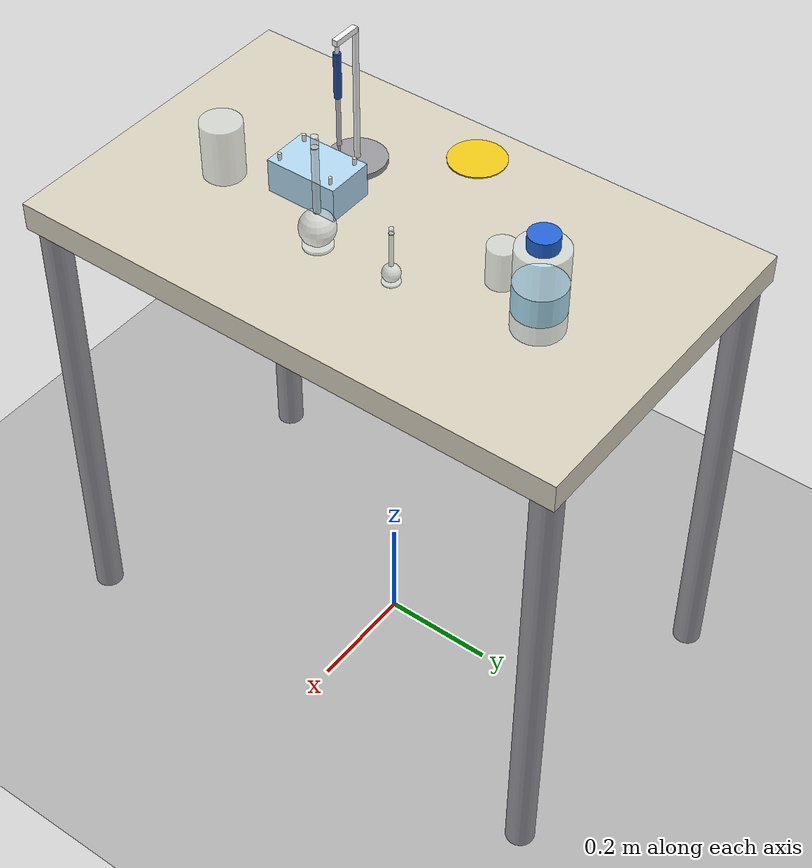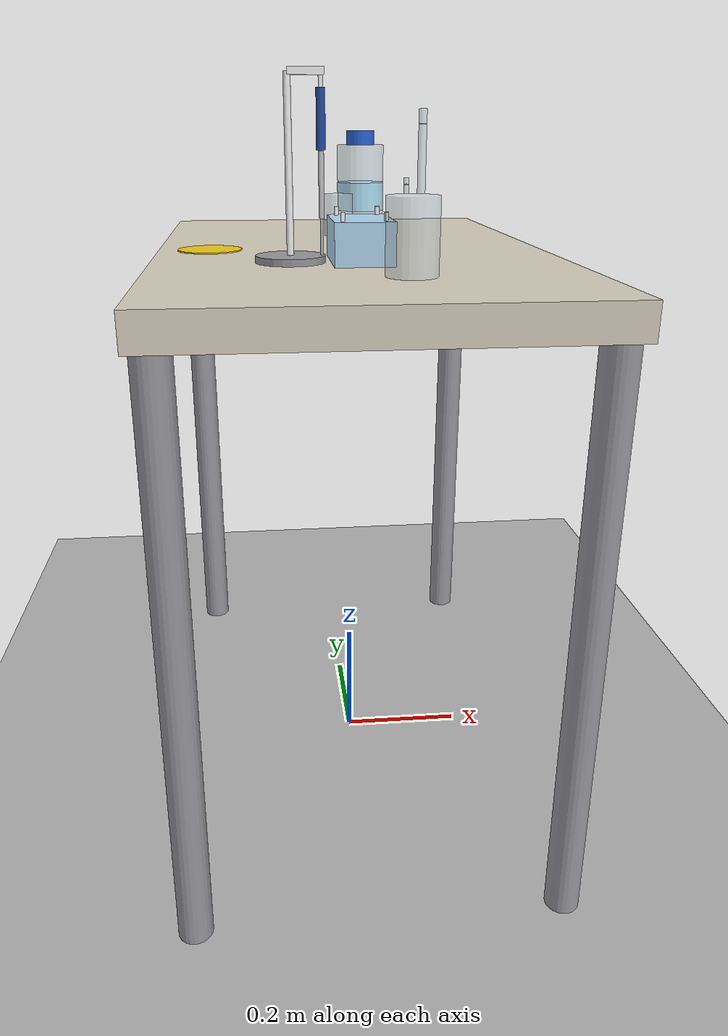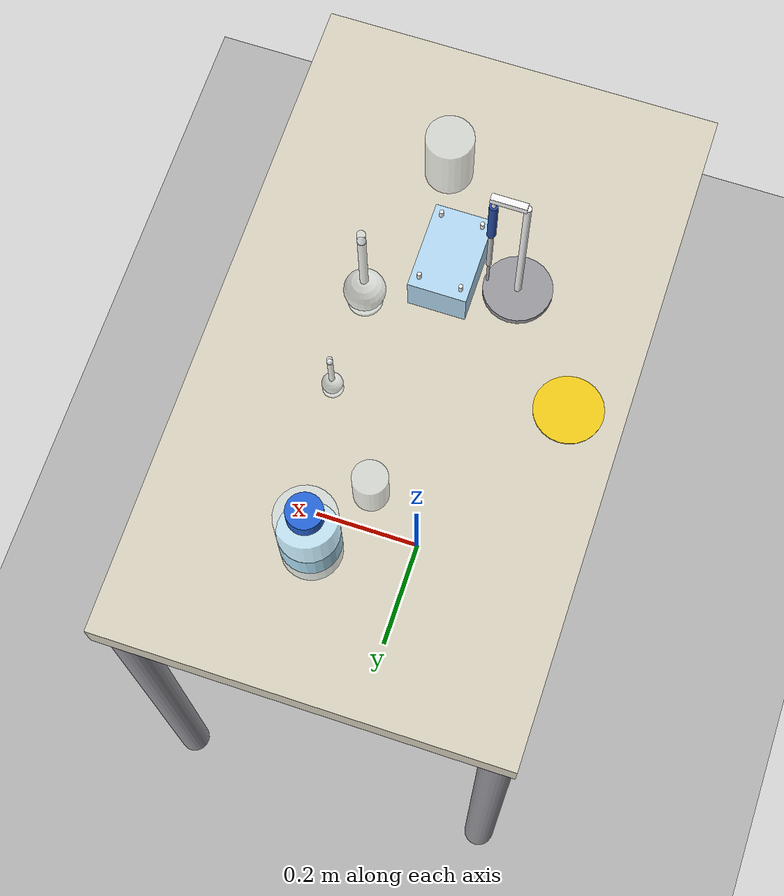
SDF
<?xml version="1.0" ?>
<sdf version="1.7">
  <world name="ketchup_dilution_cell">

    <light name="sun" type="directional">
      <cast_shadows>true</cast_shadows>
      <pose>0 0 10 0 0 0</pose>
      <diffuse>0.8 0.8 0.8 1</diffuse>
      <specular>0.2 0.2 0.2 1</specular>
      <attenuation>
        <range>1000</range>
        <constant>0.9</constant>
        <linear>0.01</linear>
        <quadratic>0.001</quadratic>
      </attenuation>
      <direction>-0.5 0.1 -0.9</direction>
    </light>

    <model name="ground_plane">
      <static>true</static>
      <link name="link">
        <collision name="c">
          <geometry>
            <plane>
              <normal>0 0 1</normal>
              <size>100 100</size>
            </plane>
          </geometry>
        </collision>
        <visual name="v">
          <geometry>
            <plane>
              <normal>0 0 1</normal>
              <size>100 100</size>
            </plane>
          </geometry>
          <material>
            <ambient>0.60 0.60 0.60 1</ambient>
            <diffuse>0.70 0.70 0.70 1</diffuse>
          </material>
        </visual>
      </link>
    </model>

    <model name="bench">
      <static>true</static>
      <pose>0 0 0 0 0 0</pose>
      <link name="link">
        <visual name="top">
          <pose>0 0 0.875 0 0 0</pose>
          <geometry><box><size>0.60 1.00 0.05</size></box></geometry>
          <material>
            <ambient>0.85 0.82 0.75 1</ambient>
            <diffuse>0.85 0.82 0.75 1</diffuse>
          </material>
        </visual>
        <collision name="top_c">
          <pose>0 0 0.875 0 0 0</pose>
          <geometry><box><size>0.60 1.00 0.05</size></box></geometry>
        </collision>
        <visual name="leg_fr">
          <pose>0.27 -0.47 0.425 0 0 0</pose>
          <geometry><cylinder><radius>0.025</radius><length>0.850</length></cylinder></geometry>
          <material>
            <ambient>0.45 0.45 0.48 1</ambient>
            <diffuse>0.60 0.60 0.63 1</diffuse>
          </material>
        </visual>
        <collision name="leg_fr_c">
          <pose>0.27 -0.47 0.425 0 0 0</pose>
          <geometry><cylinder><radius>0.025</radius><length>0.850</length></cylinder></geometry>
        </collision>
        <visual name="leg_fl">
          <pose>0.27 0.47 0.425 0 0 0</pose>
          <geometry><cylinder><radius>0.025</radius><length>0.850</length></cylinder></geometry>
          <material>
            <ambient>0.45 0.45 0.48 1</ambient>
            <diffuse>0.60 0.60 0.63 1</diffuse>
          </material>
        </visual>
        <collision name="leg_fl_c">
          <pose>0.27 0.47 0.425 0 0 0</pose>
          <geometry><cylinder><radius>0.025</radius><length>0.850</length></cylinder></geometry>
        </collision>
        <visual name="leg_br">
          <pose>-0.27 -0.47 0.425 0 0 0</pose>
          <geometry><cylinder><radius>0.025</radius><length>0.850</length></cylinder></geometry>
          <material>
            <ambient>0.45 0.45 0.48 1</ambient>
            <diffuse>0.60 0.60 0.63 1</diffuse>
          </material>
        </visual>
        <collision name="leg_br_c">
          <pose>-0.27 -0.47 0.425 0 0 0</pose>
          <geometry><cylinder><radius>0.025</radius><length>0.850</length></cylinder></geometry>
        </collision>
        <visual name="leg_bl">
          <pose>-0.27 0.47 0.425 0 0 0</pose>
          <geometry><cylinder><radius>0.025</radius><length>0.850</length></cylinder></geometry>
          <material>
            <ambient>0.45 0.45 0.48 1</ambient>
            <diffuse>0.60 0.60 0.63 1</diffuse>
          </material>
        </visual>
        <collision name="leg_bl_c">
          <pose>-0.27 0.47 0.425 0 0 0</pose>
          <geometry><cylinder><radius>0.025</radius><length>0.850</length></cylinder></geometry>
        </collision>
      </link>
    </model>

    <model name="arm_base_marker">
      <static>true</static>
      <pose>-0.22 0.00 0.901 0 0 0</pose>
      <link name="disc">
        <visual name="v">
          <geometry><cylinder><radius>0.05</radius><length>0.002</length></cylinder></geometry>
          <material>
            <ambient>0.95 0.80 0.10 1</ambient>
            <diffuse>0.95 0.80 0.10 1</diffuse>
          </material>
        </visual>
      </link>
    </model>

    <model name="source_beaker">
      <pose>0.00 0.20 0.935 0 0 0</pose>
      <link name="link">
        <inertial>
          <mass>0.150</mass>
          <inertia>
            <ixx>1.0e-4</ixx><iyy>1.0e-4</iyy><izz>5.0e-5</izz>
            <ixy>0</ixy><ixz>0</ixz><iyz>0</iyz>
          </inertia>
        </inertial>
        <visual name="glass">
          <geometry><cylinder><radius>0.025</radius><length>0.070</length></cylinder></geometry>
          <material>
            <ambient>0.85 0.90 0.92 0.50</ambient>
            <diffuse>0.85 0.90 0.92 0.50</diffuse>
          </material>
        </visual>
        <visual name="extract">
          <pose>0 0 -0.012 0 0 0</pose>
          <geometry><cylinder><radius>0.023</radius><length>0.044</length></cylinder></geometry>
          <material>
            <ambient>0.40 0.15 0.08 0.85</ambient>
            <diffuse>0.55 0.18 0.10 0.85</diffuse>
          </material>
        </visual>
        <collision name="c">
          <geometry><cylinder><radius>0.025</radius><length>0.070</length></cylinder></geometry>
        </collision>
      </link>
    </model>

    <model name="volumetric_flask_10ml">
      <pose>0.10 0.07 0.900 0 0 0</pose>
      <link name="link">
        <inertial>
          <mass>0.035</mass>
          <inertia>
            <ixx>5.0e-5</ixx><iyy>5.0e-5</iyy><izz>5.0e-6</izz>
            <ixy>0</ixy><ixz>0</ixz><iyz>0</iyz>
          </inertia>
        </inertial>
        <visual name="foot">
          <pose>0 0 0.0015 0 0 0</pose>
          <geometry><cylinder><radius>0.015</radius><length>0.003</length></cylinder></geometry>
          <material>
            <ambient>0.85 0.90 0.92 0.55</ambient>
            <diffuse>0.85 0.90 0.92 0.55</diffuse>
          </material>
        </visual>
        <visual name="bulb">
          <pose>0 0 0.018 0 0 0</pose>
          <geometry><sphere><radius>0.015</radius></sphere></geometry>
          <material>
            <ambient>0.85 0.90 0.92 0.55</ambient>
            <diffuse>0.85 0.90 0.92 0.55</diffuse>
          </material>
        </visual>
        <visual name="neck">
          <pose>0 0 0.068 0 0 0</pose>
          <geometry><cylinder><radius>0.004</radius><length>0.070</length></cylinder></geometry>
          <material>
            <ambient>0.85 0.90 0.92 0.55</ambient>
            <diffuse>0.85 0.90 0.92 0.55</diffuse>
          </material>
        </visual>
        <visual name="ring">
          <pose>0 0 0.093 0 0 0</pose>
          <geometry><cylinder><radius>0.00425</radius><length>0.001</length></cylinder></geometry>
          <material>
            <ambient>0.95 0.95 0.95 1</ambient>
            <diffuse>0.98 0.98 0.98 1</diffuse>
          </material>
        </visual>
        <collision name="c">
          <geometry><cylinder><radius>0.015</radius><length>0.103</length></cylinder></geometry>
        </collision>
      </link>
    </model>

    <model name="volumetric_flask_100ml">
      <pose>0.10 -0.07 0.900 0 0 0</pose>
      <link name="link">
        <inertial>
          <mass>0.150</mass>
          <inertia>
            <ixx>5.0e-4</ixx><iyy>5.0e-4</iyy><izz>5.0e-5</izz>
            <ixy>0</ixy><ixz>0</ixz><iyz>0</iyz>
          </inertia>
        </inertial>
        <visual name="foot">
          <pose>0 0 0.0025 0 0 0</pose>
          <geometry><cylinder><radius>0.025</radius><length>0.005</length></cylinder></geometry>
          <material>
            <ambient>0.85 0.90 0.92 0.55</ambient>
            <diffuse>0.85 0.90 0.92 0.55</diffuse>
          </material>
        </visual>
        <visual name="bulb">
          <pose>0 0 0.035 0 0 0</pose>
          <geometry><sphere><radius>0.030</radius></sphere></geometry>
          <material>
            <ambient>0.85 0.90 0.92 0.55</ambient>
            <diffuse>0.85 0.90 0.92 0.55</diffuse>
          </material>
        </visual>
        <visual name="neck">
          <pose>0 0 0.135 0 0 0</pose>
          <geometry><cylinder><radius>0.006</radius><length>0.140</length></cylinder></geometry>
          <material>
            <ambient>0.85 0.90 0.92 0.55</ambient>
            <diffuse>0.85 0.90 0.92 0.55</diffuse>
          </material>
        </visual>
        <visual name="ring">
          <pose>0 0 0.185 0 0 0</pose>
          <geometry><cylinder><radius>0.00625</radius><length>0.001</length></cylinder></geometry>
          <material>
            <ambient>0.95 0.95 0.95 1</ambient>
            <diffuse>0.98 0.98 0.98 1</diffuse>
          </material>
        </visual>
        <collision name="c">
          <geometry><cylinder><radius>0.030</radius><length>0.205</length></cylinder></geometry>
        </collision>
      </link>
    </model>

    <model name="solvent_bottle">
      <pose>0.05 0.30 0.975 0 0 0</pose>
      <link name="link">
        <inertial>
          <mass>0.700</mass>
          <inertia>
            <ixx>1.8e-3</ixx><iyy>1.8e-3</iyy><izz>6.3e-4</izz>
            <ixy>0</ixy><ixz>0</ixz><iyz>0</iyz>
          </inertia>
        </inertial>
        <visual name="body">
          <geometry><cylinder><radius>0.0425</radius><length>0.150</length></cylinder></geometry>
          <material>
            <ambient>0.85 0.92 0.95 0.55</ambient>
            <diffuse>0.85 0.92 0.95 0.55</diffuse>
          </material>
        </visual>
        <visual name="cap">
          <pose>0 0 0.0875 0 0 0</pose>
          <geometry><cylinder><radius>0.025</radius><length>0.025</length></cylinder></geometry>
          <material>
            <ambient>0.10 0.30 0.70 1</ambient>
            <diffuse>0.15 0.40 0.85 1</diffuse>
          </material>
        </visual>
        <visual name="label">
          <pose>0 0 -0.015 0 0 0</pose>
          <geometry><cylinder><radius>0.0426</radius><length>0.050</length></cylinder></geometry>
          <material>
            <ambient>0.65 0.85 0.95 1</ambient>
            <diffuse>0.70 0.90 0.98 1</diffuse>
          </material>
        </visual>
        <collision name="c">
          <geometry><cylinder><radius>0.0425</radius><length>0.175</length></cylinder></geometry>
        </collision>
      </link>
    </model>

    <model name="pipette_stand">
      <static>true</static>
      <pose>-0.10 -0.15 0.900 0 0 0</pose>
      <link name="foot">
        <pose>0 0 0.005 0 0 0</pose>
        <visual name="v">
          <geometry><cylinder><radius>0.05</radius><length>0.010</length></cylinder></geometry>
          <material>
            <ambient>0.45 0.45 0.48 1</ambient>
            <diffuse>0.60 0.60 0.62 1</diffuse>
          </material>
        </visual>
        <collision name="c">
          <geometry><cylinder><radius>0.05</radius><length>0.010</length></cylinder></geometry>
        </collision>
      </link>
      <link name="pole">
        <pose>0 0 0.130 0 0 0</pose>
        <visual name="v">
          <geometry><cylinder><radius>0.005</radius><length>0.240</length></cylinder></geometry>
          <material>
            <ambient>0.92 0.92 0.92 1</ambient>
            <diffuse>0.97 0.97 0.97 1</diffuse>
          </material>
        </visual>
      </link>
      <link name="arm">
        <pose>0.025 0 0.250 0 0 0</pose>
        <visual name="v">
          <geometry><box><size>0.050 0.010 0.010</size></box></geometry>
          <material>
            <ambient>0.92 0.92 0.92 1</ambient>
            <diffuse>0.97 0.97 0.97 1</diffuse>
          </material>
        </visual>
      </link>
      <link name="hook">
        <pose>0.045 0 0.230 0 0 0</pose>
        <visual name="v">
          <geometry><cylinder><radius>0.003</radius><length>0.030</length></cylinder></geometry>
          <material>
            <ambient>0.92 0.92 0.92 1</ambient>
            <diffuse>0.97 0.97 0.97 1</diffuse>
          </material>
        </visual>
      </link>
    </model>

    <model name="pipette_p1000">
      <pose>-0.055 -0.15 1.010 0 0 0</pose>
      <link name="link">
        <inertial>
          <mass>0.100</mass>
          <inertia>
            <ixx>5.0e-4</ixx><iyy>5.0e-4</iyy><izz>5.0e-6</izz>
            <ixy>0</ixy><ixz>0</ixz><iyz>0</iyz>
          </inertia>
        </inertial>
        <visual name="thumb_wheel">
          <pose>0 0 0.080 0 0 0</pose>
          <geometry><cylinder><radius>0.00625</radius><length>0.080</length></cylinder></geometry>
          <material>
            <ambient>0.10 0.20 0.45 1</ambient>
            <diffuse>0.15 0.30 0.65 1</diffuse>
          </material>
        </visual>
        <visual name="body">
          <pose>0 0 0 0 0 0</pose>
          <geometry><cylinder><radius>0.00375</radius><length>0.100</length></cylinder></geometry>
          <material>
            <ambient>0.60 0.60 0.62 1</ambient>
            <diffuse>0.78 0.78 0.80 1</diffuse>
          </material>
        </visual>
        <visual name="tip_shaft">
          <pose>0 0 -0.080 0 0 0</pose>
          <geometry><cylinder><radius>0.002</radius><length>0.060</length></cylinder></geometry>
          <material>
            <ambient>0.55 0.55 0.58 1</ambient>
            <diffuse>0.72 0.72 0.75 1</diffuse>
          </material>
        </visual>
        <collision name="c">
          <geometry><cylinder><radius>0.00625</radius><length>0.240</length></cylinder></geometry>
        </collision>
      </link>
    </model>

    <model name="tip_box">
      <static>true</static>
      <pose>0.00 -0.15 0.930 0 0 0</pose>
      <link name="link">
        <visual name="box">
          <geometry><box><size>0.085 0.130 0.060</size></box></geometry>
          <material>
            <ambient>0.60 0.78 0.90 0.95</ambient>
            <diffuse>0.70 0.85 0.95 0.95</diffuse>
          </material>
        </visual>
        <visual name="tip_nw">
          <pose>-0.030 -0.050 0.036 0 0 0</pose>
          <geometry><cylinder><radius>0.003</radius><length>0.012</length></cylinder></geometry>
          <material>
            <ambient>0.92 0.92 0.92 1</ambient>
            <diffuse>0.98 0.98 0.98 1</diffuse>
          </material>
        </visual>
        <visual name="tip_ne">
          <pose>-0.030 0.050 0.036 0 0 0</pose>
          <geometry><cylinder><radius>0.003</radius><length>0.012</length></cylinder></geometry>
          <material>
            <ambient>0.92 0.92 0.92 1</ambient>
            <diffuse>0.98 0.98 0.98 1</diffuse>
          </material>
        </visual>
        <visual name="tip_sw">
          <pose>0.030 -0.050 0.036 0 0 0</pose>
          <geometry><cylinder><radius>0.003</radius><length>0.012</length></cylinder></geometry>
          <material>
            <ambient>0.92 0.92 0.92 1</ambient>
            <diffuse>0.98 0.98 0.98 1</diffuse>
          </material>
        </visual>
        <visual name="tip_se">
          <pose>0.030 0.050 0.036 0 0 0</pose>
          <geometry><cylinder><radius>0.003</radius><length>0.012</length></cylinder></geometry>
          <material>
            <ambient>0.92 0.92 0.92 1</ambient>
            <diffuse>0.98 0.98 0.98 1</diffuse>
          </material>
        </visual>
        <collision name="c">
          <geometry><box><size>0.085 0.130 0.060</size></box></geometry>
        </collision>
      </link>
    </model>

    <model name="waste_beaker">
      <pose>0.05 -0.30 0.950 0 0 0</pose>
      <link name="link">
        <inertial>
          <mass>0.300</mass>
          <inertia>
            <ixx>4.5e-4</ixx><iyy>4.5e-4</iyy><izz>3.5e-4</izz>
            <ixy>0</ixy><ixz>0</ixz><iyz>0</iyz>
          </inertia>
        </inertial>
        <visual name="glass">
          <geometry><cylinder><radius>0.035</radius><length>0.100</length></cylinder></geometry>
          <material>
            <ambient>0.85 0.90 0.92 0.50</ambient>
            <diffuse>0.85 0.90 0.92 0.50</diffuse>
          </material>
        </visual>
        <visual name="used_tips">
          <pose>0 0 -0.038 0 0 0</pose>
          <geometry><cylinder><radius>0.033</radius><length>0.020</length></cylinder></geometry>
          <material>
            <ambient>0.75 0.75 0.78 0.80</ambient>
            <diffuse>0.85 0.85 0.88 0.80</diffuse>
          </material>
        </visual>
        <collision name="c">
          <geometry><cylinder><radius>0.035</radius><length>0.100</length></cylinder></geometry>
        </collision>
      </link>
    </model>

  </world>
</sdf>
